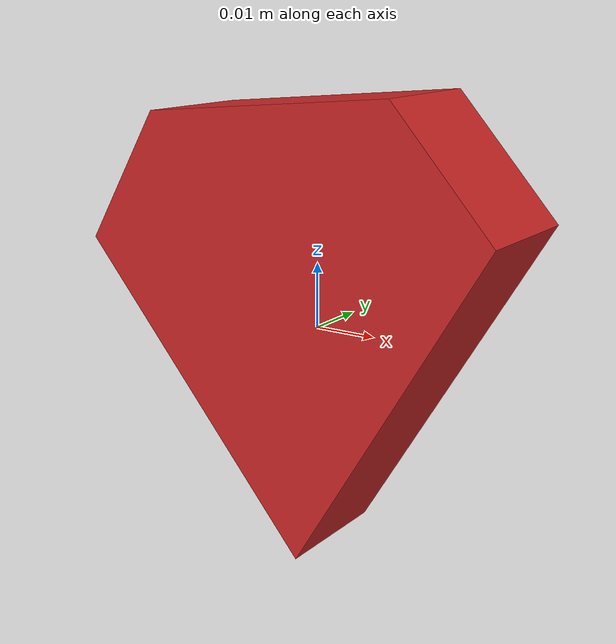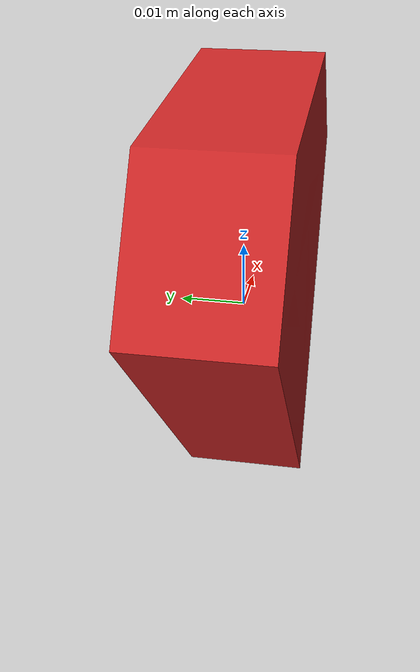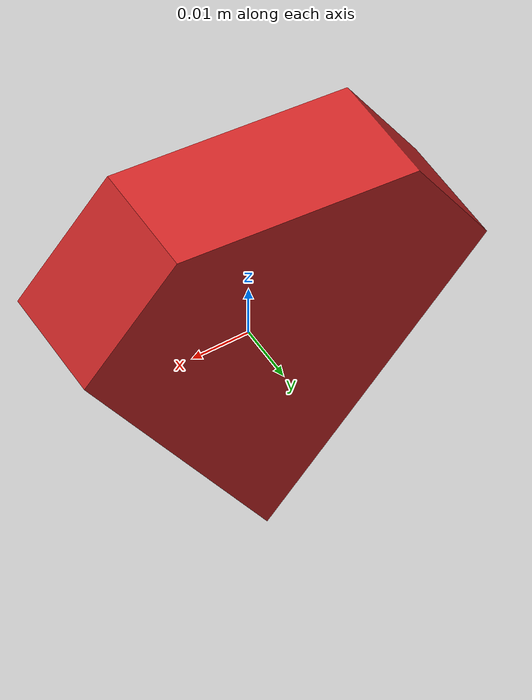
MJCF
<mujoco model="diamond">
  <default>
    <default class="visual">
      <geom group="2" type="mesh" contype="0" conaffinity="0"/>
    </default>
    <default class="collision">
      <geom group="3" type="mesh"/>
    </default>
  </default>
  <asset>
    <texture type="2d" name="texture" file="texture.png"/>
    <material name="Red" texture="texture" specular="0.0" shininess="0.25"/>
    <mesh file="diamond.obj"/>
  </asset>
  <worldbody>
    <body name="diamond">
      <freejoint/>
      <geom material="Red" mesh="diamond" class="visual"/>
      <geom mesh="diamond" class="collision"/>
    </body>
  </worldbody>
</mujoco>
